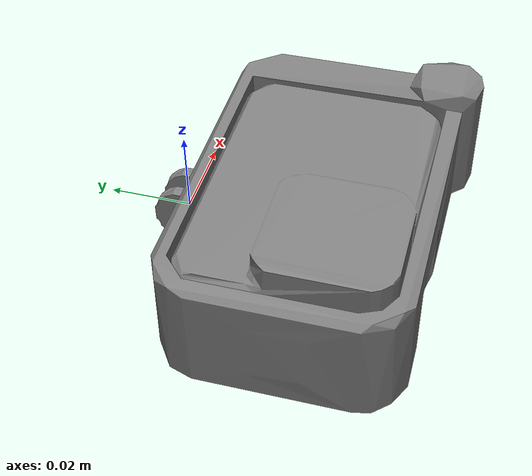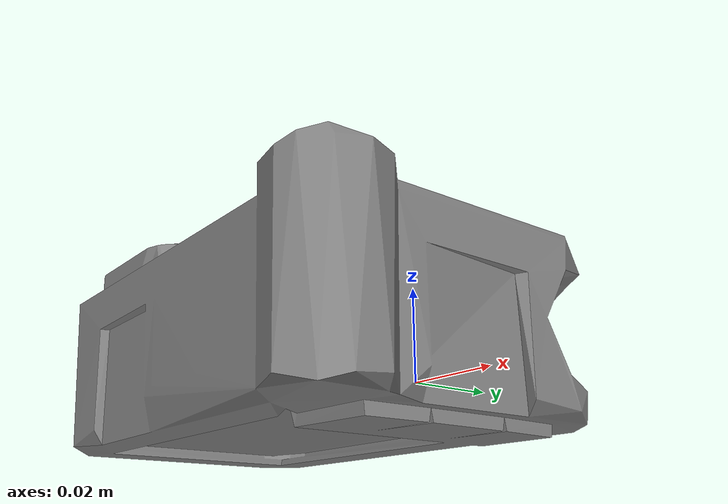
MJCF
<mujoco model="gopro">
    <compiler angle="radian" meshdir="assets" />

    <default>
        <default class="visual">
            <geom type="mesh" contype="0" conaffinity="0" group="2" />
        </default>
        <default class="collision">
            <geom type="box" group="3" mass="0" density="0" />
        </default>
    </default>

    <asset>
        <mesh file="gopro_decimated.obj" name="gopro" />
        <mesh file="gopro_case_decimated.obj" name="gopro_case" />
    </asset>

    <worldbody>
        <body name="gopro">
            <geom size="0.045 0.035 0.017"
                pos="0.006 -0.029 0.002"
                class="collision" mass="0.0" />
            <geom class="visual" mesh="gopro" mass="0.153" />
            <geom class="visual" mesh="gopro_case" mass="0.075" />
            <!-- fisheye adapter Max Lens Mod 2.0 -->
            <!-- hero 11 superview, no hypersmooth -->
            <camera fovy="121" name="wide" pos="-0.01975 -0.040254 0.020247"
                euler="0 3.14159265359 0" />
        </body>
    </worldbody>
</mujoco>
